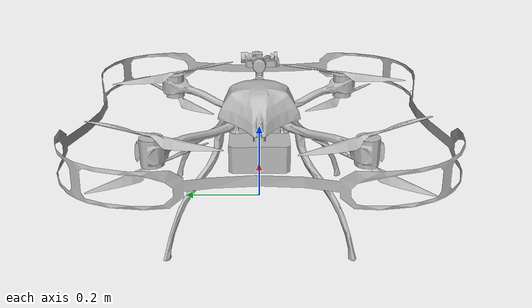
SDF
<?xml version='1.0' encoding='utf-8'?>
<sdf version='1.6'>
  <model name='emesent_hovermap_sensor_config_1'>
    <pose>0 0 0.2 0 0 0</pose>
    <link name='base_link'>
      <pose>0 0 0 0 -0 0</pose>
      <inertial>
        <pose>0 0 0 0 -0 0</pose>
        <mass>5.281</mass>
        <inertia>
          <ixx>0.105225</ixx>
          <ixy>0</ixy>
          <ixz>0</ixz>
          <iyy>0.11353</iyy>
          <iyz>0</iyz>
          <izz>0.133861</izz>
        </inertia>
      </inertial>
      <collision name='base_link_fixed_joint_lump__body_collision'>
        <pose>0.11 -0 0 0 -0 1.5708</pose>
        <geometry>
          <mesh>
            <scale>1 1 1</scale>
            <uri>meshes/navi-drone-hipoly.dae</uri>
          </mesh>
        </geometry>
      </collision>
      <collision name='base_link_fixed_joint_lump__body_collision_1'>
        <pose>0.11 -0 0 0 -0 1.5708</pose>
        <geometry>
          <mesh>
            <scale>1 1 1</scale>
            <uri>meshes/navi-guard.dae</uri>
          </mesh>
        </geometry>
      </collision>
      <collision name='base_link_fixed_joint_lump__hovermap_base_collision_2'>
        <pose>0.1195 -0 -0.0115 0 -0 1.5708</pose>
        <geometry>
          <mesh>
            <scale>1 1 1</scale>
            <uri>meshes/ST-LIDAR-case-2.dae</uri>
          </mesh>
        </geometry>
      </collision>
      <collision name='base_link_fixed_joint_lump__gimbal_base_collision_3'>
        <pose>0.18 0 0.035 0 -0 0</pose>
        <geometry>
          <box>
            <size>0.07 0.05 0.03</size>
          </box>
        </geometry>
      </collision>
      <visual name='base_link_fixed_joint_lump__body_visual'>
        <pose>0.11 -0 0 0 -0 1.5708</pose>
        <geometry>
          <mesh>
            <scale>1 1 1</scale>
            <uri>meshes/navi-drone-hipoly-mount.dae</uri>
          </mesh>
        </geometry>
      </visual>
      <visual name='base_link_fixed_joint_lump__body_visual_1'>
        <pose>0.11 -0 0 0 -0 1.5708</pose>
        <geometry>
          <mesh>
            <scale>1 1 1</scale>
            <uri>meshes/navi-guard.dae</uri>
          </mesh>
        </geometry>
      </visual>
      <visual name='base_link_fixed_joint_lump__hovermap_base_visual_2'>
        <pose>0.1195 -0 -0.0115 0 -0 1.5708</pose>
        <geometry>
          <mesh>
            <scale>1 1 1</scale>
            <uri>meshes/ST-LIDAR-case-2.dae</uri>
          </mesh>
        </geometry>
      </visual>
      <visual name='base_link_fixed_joint_lump__gimbal_base_visual_3'>
          <pose>0.18 0 0.035 0 -0 0</pose>
          <geometry>
              <box>
                  <size>0.07 0.05 0.03</size>
              </box>
          </geometry>
      </visual>
      <velocity_decay/>
      <gravity>1</gravity>
      <velocity_decay/>
      <sensor name='imu' type='imu'>
          <always_on>1</always_on>
          <update_rate>100</update_rate>
          <imu>
              <enable_orientation>0</enable_orientation>
              <angular_velocity>
                  <x>
                      <noise type="gaussian">
                          <mean>0</mean>
                          <stddev>0.009</stddev>
                          <bias_mean>0.00075</bias_mean>
                          <bias_stddev>0.005</bias_stddev>
                          <dynamic_bias_stddev>0.00002</dynamic_bias_stddev>
                          <dynamic_bias_correlation_time>400.0</dynamic_bias_correlation_time>
                          <precision>0.00025</precision>
                      </noise>
                  </x>
                  <y>
                      <noise type="gaussian">
                          <mean>0</mean>
                          <stddev>0.009</stddev>
                          <bias_mean>0.00075</bias_mean>
                          <bias_stddev>0.005</bias_stddev>
                          <dynamic_bias_stddev>0.00002</dynamic_bias_stddev>
                          <dynamic_bias_correlation_time>400.0</dynamic_bias_correlation_time>
                          <precision>0.00025</precision>
                      </noise>
                  </y>
                  <z>
                      <noise type="gaussian">
                          <mean>0</mean>
                          <stddev>0.009</stddev>
                          <bias_mean>0.00075</bias_mean>
                          <bias_stddev>0.005</bias_stddev>
                          <dynamic_bias_stddev>0.00002</dynamic_bias_stddev>
                          <dynamic_bias_correlation_time>400.0</dynamic_bias_correlation_time>
                          <precision>0.00025</precision>
                      </noise>
                  </z>
              </angular_velocity>
              <linear_acceleration>
                  <x>
                      <noise type="gaussian">
                          <mean>0</mean>
                          <stddev>0.021</stddev>
                          <bias_mean>0.05</bias_mean>
                          <bias_stddev>0.0075</bias_stddev>
                          <dynamic_bias_stddev>0.000375</dynamic_bias_stddev>
                          <dynamic_bias_correlation_time>175.0</dynamic_bias_correlation_time>
                          <precision>0.005</precision>
                      </noise>
                  </x>
                  <y>
                      <noise type="gaussian">
                          <mean>0</mean>
                          <stddev>0.021</stddev>
                          <bias_mean>0.05</bias_mean>
                          <bias_stddev>0.0075</bias_stddev>
                          <dynamic_bias_stddev>0.000375</dynamic_bias_stddev>
                          <dynamic_bias_correlation_time>175.0</dynamic_bias_correlation_time>
                          <precision>0.005</precision>
                      </noise>
                  </y>
                  <z>
                      <noise type="gaussian">
                          <mean>0</mean>
                          <stddev>0.021</stddev>
                          <bias_mean>0.05</bias_mean>
                          <bias_stddev>0.0075</bias_stddev>
                          <dynamic_bias_stddev>0.000375</dynamic_bias_stddev>
                          <dynamic_bias_correlation_time>175.0</dynamic_bias_correlation_time>
                          <precision>0.005</precision>
                      </noise>
                  </z>
              </linear_acceleration>
          </imu>
      </sensor>
      <sensor name="air_pressure" type="air_pressure">
        <always_on>1</always_on>
        <update_rate>20</update_rate>
        <air_pressure>
          <reference_altitude>0</reference_altitude>
          <noise type="gaussian">
            <mean>0.00000008</mean>
          </noise>
        </air_pressure>
      </sensor>
      <sensor name="magnetometer" type="magnetometer">
        <always_on>1</always_on>
        <update_rate>20</update_rate>
        <magnetometer>
          <x>
            <noise type="gaussian">
              <mean>0.000000080</mean>
              <bias_mean>0.000000400</bias_mean>
            </noise>
          </x>
          <y>
            <noise type="gaussian">
              <mean>0.000000080</mean>
              <bias_mean>0.000000400</bias_mean>
            </noise>
          </y>
          <z>
            <noise type="gaussian">
              <mean>0.000000080</mean>
              <bias_mean>0.000000400</bias_mean>
            </noise>
          </z>
        </magnetometer>
      </sensor>
    </link>
    <link name='gimbal_pan'>
      <pose>0.2 0 0.05 0 -0 0</pose>
      <inertial>
        <pose>0 0 0 0 -0 0</pose>
        <mass>0.0001</mass>
        <inertia>
          <ixx>0.00058083</ixx>
          <ixy>0</ixy>
          <ixz>0</ixz>
          <iyy>0.0005</iyy>
          <iyz>0</iyz>
          <izz>0.00059083</izz>
        </inertia>
      </inertial>
      <collision name='gimbal_pan_collision'>
        <pose>0 0 0 0 -0 0</pose>
        <geometry>
          <box>
            <size>0.001 0.001 0.001</size>
          </box>
        </geometry>
        <surface>
          <contact>
            <ode/>
          </contact>
          <friction>
            <ode/>
          </friction>
        </surface>
      </collision>
      <visual name='gimbal_pan_visual'>
        <pose>0 0 0 0 -0 0</pose>
        <geometry>
          <mesh>
            <scale>1 1 1</scale>
            <uri>meshes/gimbal_pan.dae</uri>
          </mesh>
        </geometry>
      </visual>
      <gravity>1</gravity>
      <velocity_decay/>
    </link>
    <joint name='gimbal_pan_joint' type='revolute'>
      <child>gimbal_pan</child>
      <parent>base_link</parent>
      <axis>
        <xyz>0 0 1</xyz>
        <limit>
          <lower>-1.5708</lower>
          <upper>1.5708</upper>
          <effort>10</effort>
          <velocity>5</velocity>
        </limit>
        <dynamics>
          <spring_reference>0</spring_reference>
          <spring_stiffness>0</spring_stiffness>
        </dynamics>
        <use_parent_model_frame>0</use_parent_model_frame>
      </axis>
    </joint>
    <link name='gimbal_roll'>
      <pose>0.2 0 0.125 0 -0 0</pose>
      <inertial>
        <pose>0 0 0 0 -0 0</pose>
        <mass>0.0001</mass>
        <inertia>
          <ixx>0.00058083</ixx>
          <ixy>0</ixy>
          <ixz>0</ixz>
          <iyy>0.0005</iyy>
          <iyz>0</iyz>
          <izz>0.00059083</izz>
        </inertia>
      </inertial>
      <collision name='gimbal_roll_collision'>
        <pose>0 0 0 0 -0 0</pose>
        <geometry>
          <box>
            <size>0.001 0.001 0.001</size>
          </box>
        </geometry>
        <surface>
          <contact>
            <ode/>
          </contact>
          <friction>
            <ode/>
          </friction>
        </surface>
      </collision>
      <visual name='gimbal_roll_visual'>
        <pose>0 0 0 0 -0 0</pose>
        <geometry>
          <mesh>
            <scale>1 1 1</scale>
            <uri>meshes/gimbal_roll.dae</uri>
          </mesh>
        </geometry>
      </visual>
      <gravity>1</gravity>
      <velocity_decay/>
    </link>
    <joint name='gimbal_roll_joint' type='revolute'>
      <child>gimbal_roll</child>
      <parent>gimbal_pan</parent>
      <axis>
        <xyz>1 0 0</xyz>
        <limit>
          <lower>-0.785398</lower>
          <upper>0.785398</upper>
          <effort>10</effort>
          <velocity>5</velocity>
        </limit>
        <dynamics>
          <spring_reference>0</spring_reference>
          <spring_stiffness>0</spring_stiffness>
        </dynamics>
        <use_parent_model_frame>0</use_parent_model_frame>
      </axis>
    </joint>
    <link name='gimbal_tilt'>
      <pose>0.218 0 0.125 0 -0 0</pose>
      <inertial>
        <pose>-2.4e-05 0.002445 -2e-05 0 -0 0</pose>
        <mass>0.0001</mass>
        <inertia>
          <ixx>0.00216206</ixx>
          <ixy>0</ixy>
          <ixz>0</ixz>
          <iyy>0.00106169</iyy>
          <iyz>0</iyz>
          <izz>0.00218206</izz>
        </inertia>
      </inertial>
      <collision name='gimbal_tilt_collision'>
        <pose>0 0 0 0 -0 0</pose>
        <geometry>
          <box>
            <size>0.001 0.001 0.001</size>
          </box>
        </geometry>
        <surface>
          <contact>
            <ode/>
          </contact>
          <friction>
            <ode/>
          </friction>
        </surface>
      </collision>
      <visual name='gimbal_tilt_visual'>
        <pose>0 0 0 0 -0 0</pose>
        <geometry>
          <mesh>
            <scale>1 1 1</scale>
            <uri>meshes/gimbal_tilt.dae</uri>
          </mesh>
        </geometry>
      </visual>
      <visual name='gimbal_tilt_fixed_joint_lump__gimbal_flashlight_visual_2'>
        <pose>-0.012 -0.025 -0.01 0 0 -1.57</pose>
        <geometry>
          <mesh>
            <scale>0.005 0.005 0.005</scale>
            <uri>meshes/spotlight.dae</uri>
          </mesh>
        </geometry>
      </visual>
      <velocity_decay/>
      <velocity_decay/>
      <sensor name='gimbal_camera' type='camera'>
        <update_rate>10</update_rate>
        <camera name='gimbal_camera_sensor'>
          <horizontal_fov>1.287</horizontal_fov>
          <image>
            <width>4096</width>
            <height>2160</height>
          </image>
          <clip>
            <near>0.02</near>
            <far>300</far>
          </clip>
          <noise>
            <type>gaussian</type>
            <mean>0</mean>
            <stddev>0.007</stddev>
          </noise>
        </camera>
        <pose>0 0.005 0.002 0 -0 0</pose>
      </sensor>
      <gravity>1</gravity>
      <velocity_decay/>
      <light name='light_source' type='spot'>
        <pose>0.03 -0.02 -0.01 0 -1.57 0</pose>
        <attenuation>
          <range>40</range>
          <linear>0</linear>
          <constant>0.02</constant>
          <quadratic>0.02</quadratic>
        </attenuation>
        <diffuse>220 210 175 1</diffuse>
        <specular>220 210 175 1</specular>
        <spot>
          <inner_angle>0.7</inner_angle>
          <outer_angle>1</outer_angle>
          <falloff>1</falloff>
        </spot>
        <cast_shadows>1</cast_shadows>
        <direction>0 0 -1</direction>
      </light>
      <sensor name='gimbal_imu' type='imu'>
        <always_on>1</always_on>
        <update_rate>100</update_rate>
        <imu>
              <enable_orientation>0</enable_orientation>
            <angular_velocity>
                <x>
                    <noise type="gaussian">
                        <mean>0</mean>
                        <stddev>0.009</stddev>
                        <bias_mean>0.00075</bias_mean>
                        <bias_stddev>0.005</bias_stddev>
                        <dynamic_bias_stddev>0.00002</dynamic_bias_stddev>
                        <dynamic_bias_correlation_time>400.0</dynamic_bias_correlation_time>
                        <precision>0.00025</precision>
                    </noise>
                </x>
                <y>
                    <noise type="gaussian">
                        <mean>0</mean>
                        <stddev>0.009</stddev>
                        <bias_mean>0.00075</bias_mean>
                        <bias_stddev>0.005</bias_stddev>
                        <dynamic_bias_stddev>0.00002</dynamic_bias_stddev>
                        <dynamic_bias_correlation_time>400.0</dynamic_bias_correlation_time>
                        <precision>0.00025</precision>
                    </noise>
                </y>
                <z>
                    <noise type="gaussian">
                        <mean>0</mean>
                        <stddev>0.009</stddev>
                        <bias_mean>0.00075</bias_mean>
                        <bias_stddev>0.005</bias_stddev>
                        <dynamic_bias_stddev>0.00002</dynamic_bias_stddev>
                        <dynamic_bias_correlation_time>400.0</dynamic_bias_correlation_time>
                        <precision>0.00025</precision>
                    </noise>
                </z>
            </angular_velocity>
            <linear_acceleration>
                <x>
                    <noise type="gaussian">
                        <mean>0</mean>
                        <stddev>0.021</stddev>
                        <bias_mean>0.05</bias_mean>
                        <bias_stddev>0.0075</bias_stddev>
                        <dynamic_bias_stddev>0.000375</dynamic_bias_stddev>
                        <dynamic_bias_correlation_time>175.0</dynamic_bias_correlation_time>
                        <precision>0.005</precision>
                    </noise>
                </x>
                <y>
                    <noise type="gaussian">
                        <mean>0</mean>
                        <stddev>0.021</stddev>
                        <bias_mean>0.05</bias_mean>
                        <bias_stddev>0.0075</bias_stddev>
                        <dynamic_bias_stddev>0.000375</dynamic_bias_stddev>
                        <dynamic_bias_correlation_time>175.0</dynamic_bias_correlation_time>
                        <precision>0.005</precision>
                    </noise>
                </y>
                <z>
                    <noise type="gaussian">
                        <mean>0</mean>
                        <stddev>0.021</stddev>
                        <bias_mean>0.05</bias_mean>
                        <bias_stddev>0.0075</bias_stddev>
                        <dynamic_bias_stddev>0.000375</dynamic_bias_stddev>
                        <dynamic_bias_correlation_time>175.0</dynamic_bias_correlation_time>
                        <precision>0.005</precision>
                    </noise>
                </z>
            </linear_acceleration>
        </imu>
    </sensor>
    </link>
    <joint name='gimbal_tilt_joint' type='revolute'>
      <child>gimbal_tilt</child>
      <parent>gimbal_roll</parent>
      <axis>
        <xyz>0 1 0</xyz>
        <limit>
          <lower>-0.785398</lower>
          <upper>0.785398</upper>
          <effort>10</effort>
          <velocity>5</velocity>
        </limit>
        <dynamics>
          <spring_reference>0</spring_reference>
          <spring_stiffness>0</spring_stiffness>
        </dynamics>
        <use_parent_model_frame>0</use_parent_model_frame>
      </axis>
    </joint>
    <link name='encoder_rotating'>
      <pose>0.1745 -0 -0.0525 0 -1.0472 -0</pose>
      <inertial>
        <pose>0 0 -0.000891 -3.14159 -0 0</pose>
        <mass>0.0001</mass>
        <inertia>
          <ixx>2.46865e-05</ixx>
          <ixy>0</ixy>
          <ixz>0</ixz>
          <iyy>2.46865e-05</iyy>
          <iyz>-1.65708e-18</iyz>
          <izz>1.66667e-05</izz>
        </inertia>
      </inertial>
      <collision name='encoder_rotating_collision'>
        <pose>0 0 -0.0125 -3.14159 -0 1.5708</pose>
        <geometry>
          <mesh>
            <scale>1 1 1</scale>
            <uri>meshes/ST-LIDAR-hipoly.dae</uri>
          </mesh>
        </geometry>
      </collision>
      <visual name='encoder_rotating_visual'>
        <pose>0 0 -0.0125 -3.14159 -0 1.5708</pose>
        <geometry>
          <mesh>
            <scale>1 1 1</scale>
            <uri>meshes/ST-LIDAR-hipoly.dae</uri>
          </mesh>
        </geometry>
      </visual>
      <gravity>1</gravity>
      <velocity_decay/>
      <sensor name='gpu_lidar' type='gpu_lidar'>
        <always_on>1</always_on>
        <update_rate>20</update_rate>
        <pose>0 0 -0.1 0 1.5707963267 0</pose>
        <visualize>false</visualize>
        <lidar>
          <scan>
            <horizontal>
              <samples>900</samples>
              <resolution>1</resolution>
              <min_angle>-3.141592</min_angle>
              <max_angle>3.141592</max_angle>
            </horizontal>
            <vertical>
              <samples>16</samples>
              <resolution>1</resolution>
              <min_angle>-0.261799</min_angle>
              <max_angle>0.261799</max_angle>
            </vertical>
          </scan>
          <range>
            <min>0.05</min>
            <max>100</max>
            <resolution>0.01</resolution>
          </range>
          <noise>
            <type>gaussian</type>
            <mean>0</mean>
            <stddev>0.01</stddev>
          </noise>
        </lidar>
      </sensor>
    </link>
    <joint name='encoder_joint' type='revolute'>
      <child>encoder_rotating</child>
      <parent>base_link</parent>
      <axis>
        <xyz>0 0 1</xyz>
        <limit>
          <lower>-1e+16</lower>
          <upper>1e+16</upper>
          <velocity>5</velocity>
        </limit>
        <dynamics>
          <spring_reference>0</spring_reference>
          <spring_stiffness>0</spring_stiffness>
        </dynamics>
        <use_parent_model_frame>0</use_parent_model_frame>
      </axis>
    </joint>
    <link name='rotor_0'>
      <pose>0.24 -0.24 0.035 0 -0 0</pose>
      <inertial>
        <pose>0 0 0 0 -0 1.5708</pose>
        <mass>0.02</mass>
        <inertia>
          <ixx>2.32667e-06</ixx>
          <ixy>0</ixy>
          <ixz>0</ixz>
          <iyy>6.03333e-05</iyy>
          <iyz>0</iyz>
          <izz>6.23266e-05</izz>
        </inertia>
      </inertial>
      <collision name='rotor_0_collision_collision'>
        <pose>0 0 0.04 0 -0 1.01342</pose>
        <geometry>
          <box>
            <size>0.38 0.036 0.01</size>
          </box>
        </geometry>
      </collision>
      <collision name='rotor_0_collision_collision_1'>
        <pose>0 0 -0.0375 0 0 -0.604152</pose>
        <geometry>
          <box>
            <size>0.35492 0.036 0.01</size>
          </box>
        </geometry>
      </collision>
      <visual name='rotor_0_visual_visual'>
        <pose>0 0 0 0 -0 0</pose>
        <geometry>
          <mesh>
            <scale>1 1 1</scale>
            <uri>meshes/navi-15in-CW-tex.dae</uri>
          </mesh>
        </geometry>
      </visual>
      <visual name='rotor_0_visual_visual_1'>
        <pose>0 0 0 0 -0 0</pose>
        <geometry>
          <mesh>
            <scale>1 1 1</scale>
            <uri>meshes/navi-14in-CW-tex.dae</uri>
          </mesh>
        </geometry>
      </visual>
    </link>
    <joint name='rotor_0_joint' type='revolute'>
      <child>rotor_0</child>
      <parent>base_link</parent>
      <axis>
        <xyz>0 0 1</xyz>
        <limit>
          <lower>-1e+16</lower>
          <upper>1e+16</upper>
        </limit>
        <dynamics>
          <spring_reference>0</spring_reference>
          <spring_stiffness>0</spring_stiffness>
        </dynamics>
        <use_parent_model_frame>0</use_parent_model_frame>
      </axis>
    </joint>
    <link name='rotor_1'>
      <pose>-0.24 0.24 0.035 0 -0 0</pose>
      <inertial>
        <pose>0 0 0 0 -0 1.5708</pose>
        <mass>0.02</mass>
        <inertia>
          <ixx>2.32667e-06</ixx>
          <ixy>0</ixy>
          <ixz>0</ixz>
          <iyy>6.03333e-05</iyy>
          <iyz>0</iyz>
          <izz>6.23266e-05</izz>
        </inertia>
      </inertial>
      <collision name='rotor_1_collision_collision'>
        <pose>0 0 0.04 0 -0 1.01342</pose>
        <geometry>
          <box>
            <size>0.38 0.036 0.01</size>
          </box>
        </geometry>
      </collision>
      <collision name='rotor_1_collision_collision_1'>
        <pose>0 0 -0.0375 0 0 -0.604152</pose>
        <geometry>
          <box>
            <size>0.35492 0.036 0.01</size>
          </box>
        </geometry>
      </collision>
      <visual name='rotor_1_visual_visual'>
        <pose>0 0 0 0 -0 0</pose>
        <geometry>
          <mesh>
            <scale>1 1 1</scale>
            <uri>meshes/navi-15in-CW-tex.dae</uri>
          </mesh>
        </geometry>
      </visual>
      <visual name='rotor_1_visual_visual_1'>
        <pose>0 0 0 0 -0 0</pose>
        <geometry>
          <mesh>
            <scale>1 1 1</scale>
            <uri>meshes/navi-14in-CW-tex.dae</uri>
          </mesh>
        </geometry>
      </visual>
    </link>
    <joint name='rotor_1_joint' type='revolute'>
      <child>rotor_1</child>
      <parent>base_link</parent>
      <axis>
        <xyz>0 0 1</xyz>
        <limit>
          <lower>-1e+16</lower>
          <upper>1e+16</upper>
        </limit>
        <dynamics>
          <spring_reference>0</spring_reference>
          <spring_stiffness>0</spring_stiffness>
        </dynamics>
        <use_parent_model_frame>0</use_parent_model_frame>
      </axis>
    </joint>
    <link name='rotor_2'>
      <pose>0.24 0.24 0.035 0 -0 0</pose>
      <inertial>
        <pose>0 0 0 0 -0 1.5708</pose>
        <mass>0.02</mass>
        <inertia>
          <ixx>2.32667e-06</ixx>
          <ixy>0</ixy>
          <ixz>0</ixz>
          <iyy>6.03333e-05</iyy>
          <iyz>0</iyz>
          <izz>6.23266e-05</izz>
        </inertia>
      </inertial>
      <collision name='rotor_2_collision_collision'>
        <pose>0 0 0.04 0 0 -1.01342</pose>
        <geometry>
          <box>
            <size>0.38 0.036 0.01</size>
          </box>
        </geometry>
      </collision>
      <collision name='rotor_2_collision_collision_1'>
        <pose>0 0 -0.0375 0 -0 0.604152</pose>
        <geometry>
          <box>
            <size>0.35492 0.036 0.01</size>
          </box>
        </geometry>
      </collision>
      <visual name='rotor_2_visual_visual'>
        <pose>0 0 0 0 -0 0</pose>
        <geometry>
          <mesh>
            <scale>1 1 1</scale>
            <uri>meshes/navi-15in-CCW-tex.dae</uri>
          </mesh>
        </geometry>
      </visual>
      <visual name='rotor_2_visual_visual_1'>
        <pose>0 0 0 0 -0 0</pose>
        <geometry>
          <mesh>
            <scale>1 1 1</scale>
            <uri>meshes/navi-14in-CCW-tex.dae</uri>
          </mesh>
        </geometry>
      </visual>
    </link>
    <joint name='rotor_2_joint' type='revolute'>
      <child>rotor_2</child>
      <parent>base_link</parent>
      <axis>
        <xyz>0 0 1</xyz>
        <limit>
          <lower>-1e+16</lower>
          <upper>1e+16</upper>
        </limit>
        <dynamics>
          <spring_reference>0</spring_reference>
          <spring_stiffness>0</spring_stiffness>
        </dynamics>
        <use_parent_model_frame>0</use_parent_model_frame>
      </axis>
    </joint>
    <link name='rotor_3'>
      <pose>-0.24 -0.24 0.035 0 -0 0</pose>
      <inertial>
        <pose>0 0 0 0 -0 1.5708</pose>
        <mass>0.02</mass>
        <inertia>
          <ixx>2.32667e-06</ixx>
          <ixy>0</ixy>
          <ixz>0</ixz>
          <iyy>6.03333e-05</iyy>
          <iyz>0</iyz>
          <izz>6.23266e-05</izz>
        </inertia>
      </inertial>
      <collision name='rotor_3_collision_collision'>
        <pose>0 0 0.04 0 0 -1.01342</pose>
        <geometry>
          <box>
            <size>0.38 0.036 0.01</size>
          </box>
        </geometry>
      </collision>
      <collision name='rotor_3_collision_collision_1'>
        <pose>0 0 -0.0375 0 -0 0.604152</pose>
        <geometry>
          <box>
            <size>0.35492 0.036 0.01</size>
          </box>
        </geometry>
      </collision>
      <visual name='rotor_3_visual_visual'>
        <pose>0 0 0 0 -0 0</pose>
        <geometry>
          <mesh>
            <scale>1 1 1</scale>
            <uri>meshes/navi-15in-CCW-tex.dae</uri>
          </mesh>
        </geometry>
      </visual>
      <visual name='rotor_3_visual_visual_1'>
        <pose>0 0 0 0 -0 0</pose>
        <geometry>
          <mesh>
            <scale>1 1 1</scale>
            <uri>meshes/navi-14in-CCW-tex.dae</uri>
          </mesh>
        </geometry>
      </visual>
    </link>
    <joint name='rotor_3_joint' type='revolute'>
      <child>rotor_3</child>
      <parent>base_link</parent>
      <axis>
        <xyz>0 0 1</xyz>
        <limit>
          <lower>-1e+16</lower>
          <upper>1e+16</upper>
        </limit>
        <dynamics>
          <spring_reference>0</spring_reference>
          <spring_stiffness>0</spring_stiffness>
        </dynamics>
        <use_parent_model_frame>0</use_parent_model_frame>
      </axis>
    </joint>
  </model>
</sdf>
